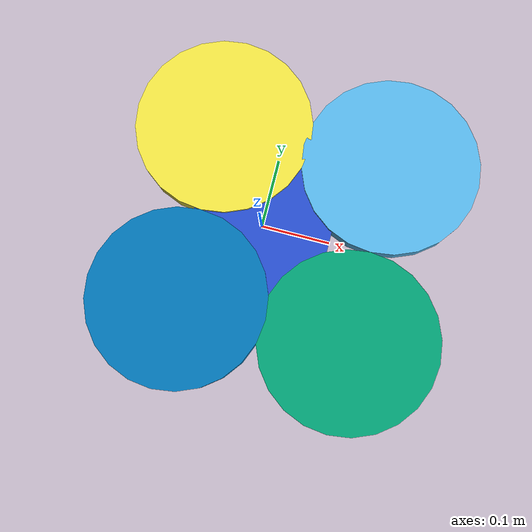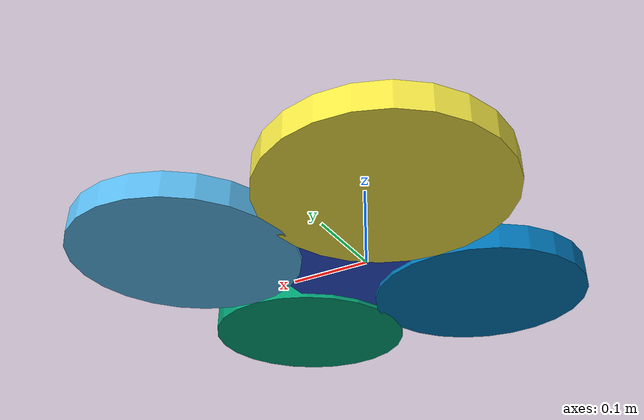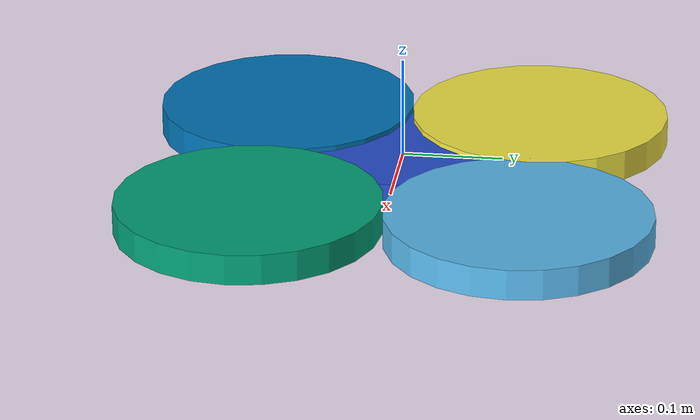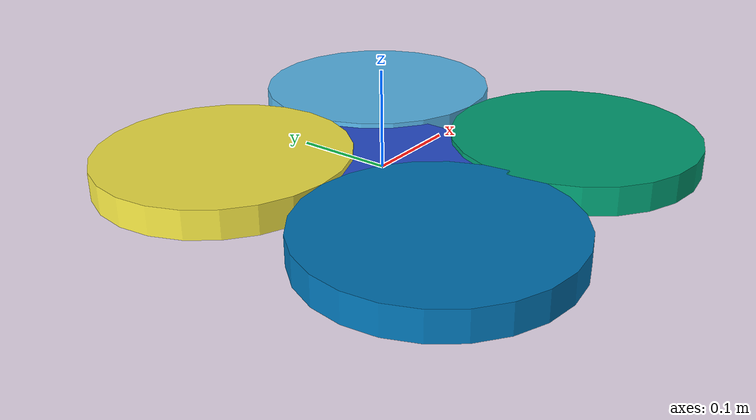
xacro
<?xml version="1.0"?>
   <robot name="drone">

     <link name="base_link">
       <visual>
		 <origin xyz="0 0 0" rpy="0 0 0" />
         <geometry>
           <box size="0.2 0.2 0.02"/>
         </geometry>
       </visual>
       <collision>
		  <origin xyz="0 0 0" rpy="0 0 0" />
          <geometry>
            <box size="0.2 0.02 0.02"/>
          </geometry>
        </collision>
     </link>

     <link name="FL">
       <visual>
		 <origin xyz="0.16 0.13 0" rpy="0 0 0" />
         <geometry>
            <cylinder length="0.03" radius="0.13"/>
         </geometry>
       </visual>
       <collision>
          <origin xyz="0.16 0.13 0" rpy="0 0 0" />
          <geometry>
            <cylinder length="0.03" radius="0.13"/>
          </geometry>
        </collision>
        <inertial>
           <mass value="0.2"/>
           <inertia ixx="1.0" ixy="0.0" ixz="0.0" iyy="1.0" iyz="0.0" izz="1.0"/>
         </inertial>
     </link>
     <link name="FR">
       <visual>
		 <origin xyz="0.16 -0.13 0" rpy="0 0 0" />
         <geometry>
            <cylinder length="0.03" radius="0.13"/>
         </geometry>
       </visual>
       <collision>
          <origin xyz="0.16 -0.13 0" rpy="0 0 0" />
          <geometry>
            <cylinder length="0.03" radius="0.13"/>
          </geometry>
        </collision>
        <inertial>
           <mass value="0.2"/>
           <inertia ixx="1.0" ixy="0.0" ixz="0.0" iyy="1.0" iyz="0.0" izz="1.0"/>
         </inertial>
     </link>
     <link name="BL">
       <visual>
		 <origin xyz="-0.09 0.13 0" rpy="0 0 0" />
         <geometry>
            <cylinder length="0.03" radius="0.13"/>
         </geometry>
       </visual>
       <collision>
          <origin xyz="-0.09 0.13 0" rpy="0 0 0" />
          <geometry>
            <cylinder length="0.03" radius="0.13"/>
          </geometry>
        </collision>
        <inertial>
           <mass value="0.2"/>
           <inertia ixx="1.0" ixy="0.0" ixz="0.0" iyy="1.0" iyz="0.0" izz="1.0"/>
         </inertial>
     </link>
     <link name="BR">
       <visual>
		 <origin xyz="-0.09 -0.13 0" rpy="0 0 0" />
         <geometry>
            <cylinder length="0.03" radius="0.13"/>
         </geometry>
       </visual>
       <collision>
          <origin xyz="-0.09 -0.13 0" rpy="0 0 0" />
          <geometry>
            <cylinder length="0.03" radius="0.13"/>
          </geometry>
        </collision>
        <inertial>
           <mass value="0.2"/>
           <inertia ixx="1.0" ixy="0.0" ixz="0.0" iyy="1.0" iyz="0.0" izz="1.0"/>
         </inertial>
     </link>

     <joint name="base_to_FL" type="fixed">
       <parent link="base_link"/>
       <child link="FL"/>
     </joint>
     <joint name="base_to_FR" type="fixed">
       <parent link="base_link"/>
       <child link="FR"/>
     </joint>
     <joint name="base_to_BL" type="fixed">
       <parent link="base_link"/>
       <child link="BL"/>
     </joint>
     <joint name="base_to_BR" type="fixed">
       <parent link="base_link"/>
       <child link="BR"/>
     </joint>

     <gazebo reference="base_link">
       <material>Gazebo/Blue</material>
       <turnGravityOff>true</turnGravityOff>
     </gazebo>
   </robot>
